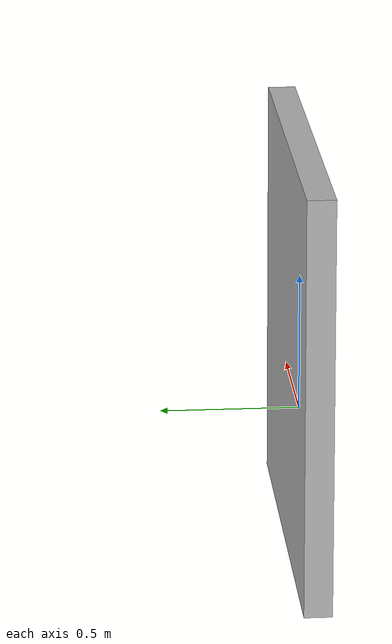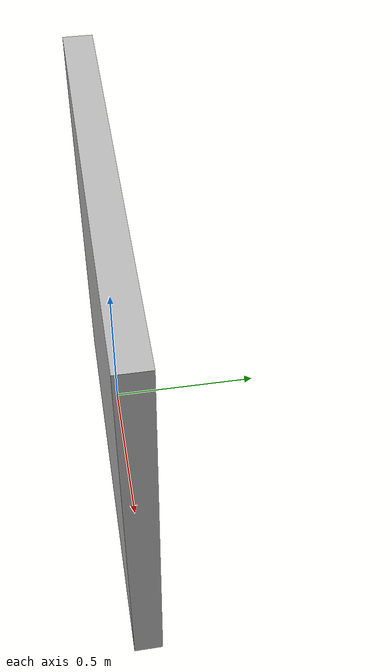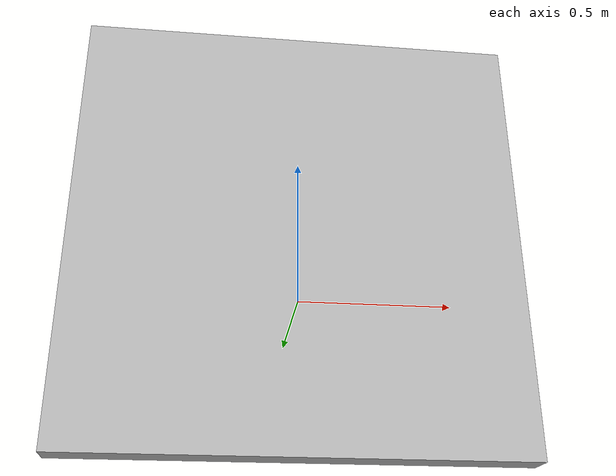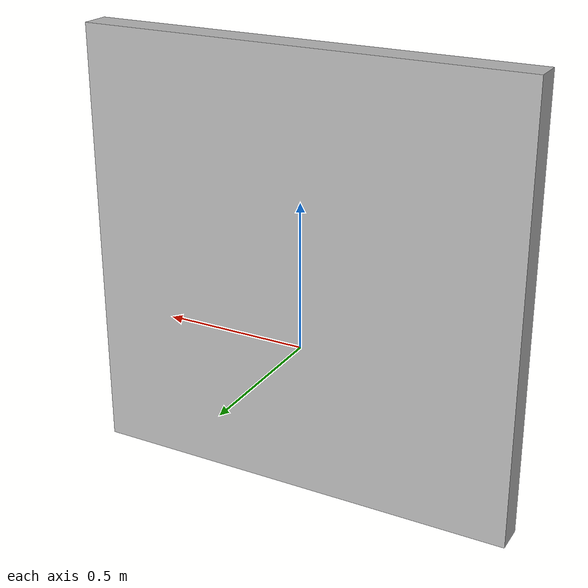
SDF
<?xml version="1.0" ?>
<sdf version="1.5">
  <model name="qr_box_paint4">
     <pose>0 0 0.25 0 0 0</pose><!-- set z to 1/2*height, so that box doesn't disappear half in the ground -->
    <static>true</static> <!-- change this to false if model should move -->
    <link name="link">
      <collision 	name="collision">
        <geometry>
          <box>
            <size>1.5 0.1 1.5</size> <!-- size of the box, x y z -->
          </box>
        </geometry>
      </collision>
      <visual name="visual">
        <geometry>
         <box>
            <size>1.5 0.1 1.5</size><!-- size of the box, x y z -->
          </box>
        </geometry>
        <material>
          <script>
            <uri>model://qr_box_paint4/materials/scripts</uri>
            <uri>model://qr_box_paint4/materials/textures</uri>
            <name>vrc/qr_paint4</name>
          </script>
        </material>
      </visual>
    </link>
  </model>
</sdf>
